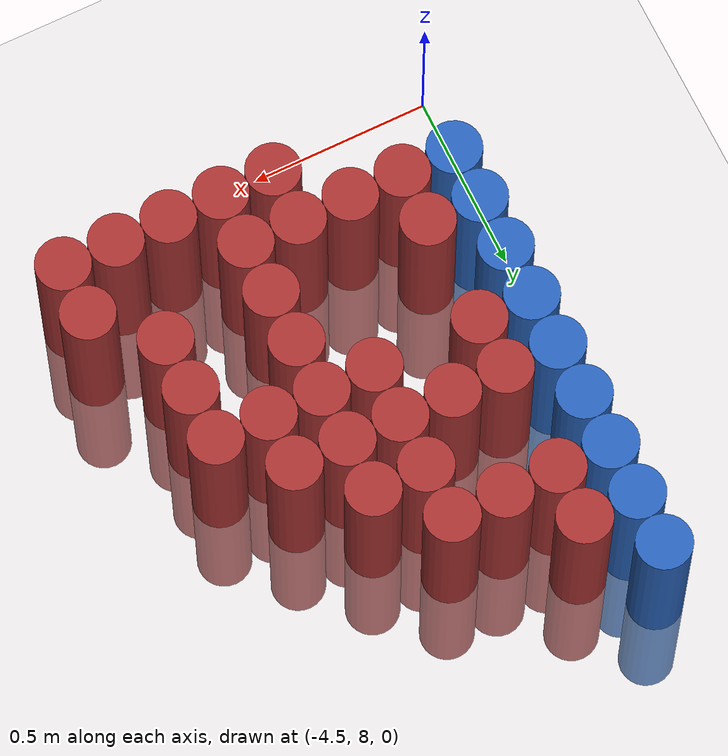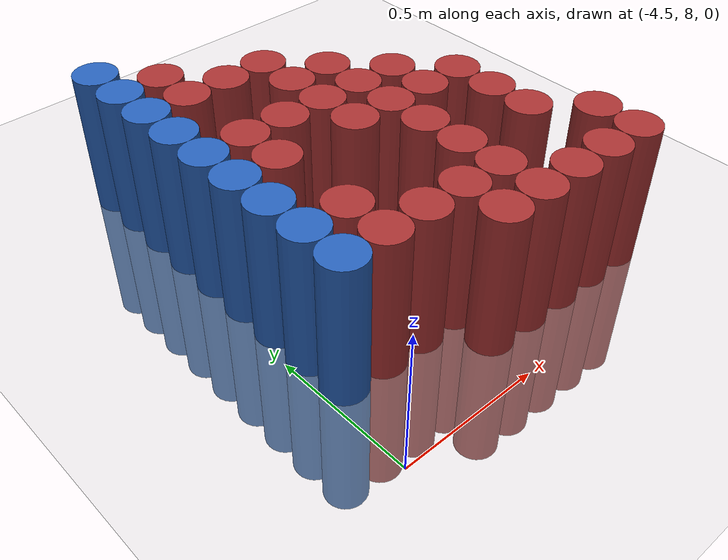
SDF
<sdf version="1.6">
 <world name="default">
  <model name="ground_plane">
   <static>1</static>
   <link name="link">
    <collision name="collision">
     <geometry><plane><normal>0 0 1</normal><size>100 100</size></plane></geometry>
     <surface><friction><ode><mu>100</mu><mu2>50</mu2></ode></friction></surface>
    </collision>
    <visual name="visual">
     <cast_shadows>0</cast_shadows>
     <geometry><plane><normal>0 0 1</normal><size>100 100</size></plane></geometry>
     <material>
      <script><uri>file://media/materials/scripts/gazebo.material</uri><name>Gazebo/Grey</name></script>
     </material>
    </visual>
   </link>
  </model>
  <model name="unit_cylinder_117">
   <static>1</static>
   <pose>-4.425000 8.325000 0.000000 0.000000 0.000000 0.000000</pose>
   <link name="link">
    <inertial>
     <mass>1</mass>
     <inertia><ixx>0.145833</ixx><ixy>0</ixy><ixz>0</ixz><iyy>0.145833</iyy><iyz>0</iyz><izz>0.125</izz></inertia>
    </inertial>
    <collision name="collision">
     <geometry><cylinder><radius>0.075000</radius><length>1</length></cylinder></geometry>
    </collision>
    <visual name="visual">
     <geometry><cylinder><radius>0.075000</radius><length>1</length></cylinder></geometry>
     <material>
      <ambient>0.152000 0.379000 0.720000 1</ambient>
      <diffuse>0.152000 0.379000 0.720000 1</diffuse>
     </material>
     <material>
      <script><name>Gazebo/Grey</name><uri>file://media/materials/scripts/gazebo.material</uri></script>
     </material>
    </visual>
    <sensor name="sensor_contact" type="contact"><contact><collision>collision</collision></contact></sensor>
   </link>
   <plugin filename="gz-sim-touchplugin-system" name="gz::sim::systems::TouchPlugin">
    <target>robot</target>
    <namespace>robot</namespace>
    <time>0.001</time>
    <enabled>true</enabled>
   </plugin>
  </model>
  <model name="unit_cylinder_118">
   <static>1</static>
   <pose>-4.425000 8.475000 0.000000 0.000000 0.000000 0.000000</pose>
   <link name="link">
    <inertial>
     <mass>1</mass>
     <inertia><ixx>0.145833</ixx><ixy>0</ixy><ixz>0</ixz><iyy>0.145833</iyy><iyz>0</iyz><izz>0.125</izz></inertia>
    </inertial>
    <collision name="collision">
     <geometry><cylinder><radius>0.075000</radius><length>1</length></cylinder></geometry>
    </collision>
    <visual name="visual">
     <geometry><cylinder><radius>0.075000</radius><length>1</length></cylinder></geometry>
     <material>
      <ambient>0.152000 0.379000 0.720000 1</ambient>
      <diffuse>0.152000 0.379000 0.720000 1</diffuse>
     </material>
     <material>
      <script><name>Gazebo/Grey</name><uri>file://media/materials/scripts/gazebo.material</uri></script>
     </material>
    </visual>
    <sensor name="sensor_contact" type="contact"><contact><collision>collision</collision></contact></sensor>
   </link>
   <plugin filename="gz-sim-touchplugin-system" name="gz::sim::systems::TouchPlugin">
    <target>robot</target>
    <namespace>robot</namespace>
    <time>0.001</time>
    <enabled>true</enabled>
   </plugin>
  </model>
  <model name="unit_cylinder_119">
   <static>1</static>
   <pose>-4.425000 8.625000 0.000000 0.000000 0.000000 0.000000</pose>
   <link name="link">
    <inertial>
     <mass>1</mass>
     <inertia><ixx>0.145833</ixx><ixy>0</ixy><ixz>0</ixz><iyy>0.145833</iyy><iyz>0</iyz><izz>0.125</izz></inertia>
    </inertial>
    <collision name="collision">
     <geometry><cylinder><radius>0.075000</radius><length>1</length></cylinder></geometry>
    </collision>
    <visual name="visual">
     <geometry><cylinder><radius>0.075000</radius><length>1</length></cylinder></geometry>
     <material>
      <ambient>0.152000 0.379000 0.720000 1</ambient>
      <diffuse>0.152000 0.379000 0.720000 1</diffuse>
     </material>
     <material>
      <script><name>Gazebo/Grey</name><uri>file://media/materials/scripts/gazebo.material</uri></script>
     </material>
    </visual>
    <sensor name="sensor_contact" type="contact"><contact><collision>collision</collision></contact></sensor>
   </link>
   <plugin filename="gz-sim-touchplugin-system" name="gz::sim::systems::TouchPlugin">
    <target>robot</target>
    <namespace>robot</namespace>
    <time>0.001</time>
    <enabled>true</enabled>
   </plugin>
  </model>
  <model name="unit_cylinder_120">
   <static>1</static>
   <pose>-4.425000 8.775000 0.000000 0.000000 0.000000 0.000000</pose>
   <link name="link">
    <inertial>
     <mass>1</mass>
     <inertia><ixx>0.145833</ixx><ixy>0</ixy><ixz>0</ixz><iyy>0.145833</iyy><iyz>0</iyz><izz>0.125</izz></inertia>
    </inertial>
    <collision name="collision">
     <geometry><cylinder><radius>0.075000</radius><length>1</length></cylinder></geometry>
    </collision>
    <visual name="visual">
     <geometry><cylinder><radius>0.075000</radius><length>1</length></cylinder></geometry>
     <material>
      <ambient>0.152000 0.379000 0.720000 1</ambient>
      <diffuse>0.152000 0.379000 0.720000 1</diffuse>
     </material>
     <material>
      <script><name>Gazebo/Grey</name><uri>file://media/materials/scripts/gazebo.material</uri></script>
     </material>
    </visual>
    <sensor name="sensor_contact" type="contact"><contact><collision>collision</collision></contact></sensor>
   </link>
   <plugin filename="gz-sim-touchplugin-system" name="gz::sim::systems::TouchPlugin">
    <target>robot</target>
    <namespace>robot</namespace>
    <time>0.001</time>
    <enabled>true</enabled>
   </plugin>
  </model>
  <model name="unit_cylinder_121">
   <static>1</static>
   <pose>-4.425000 8.925000 0.000000 0.000000 0.000000 0.000000</pose>
   <link name="link">
    <inertial>
     <mass>1</mass>
     <inertia><ixx>0.145833</ixx><ixy>0</ixy><ixz>0</ixz><iyy>0.145833</iyy><iyz>0</iyz><izz>0.125</izz></inertia>
    </inertial>
    <collision name="collision">
     <geometry><cylinder><radius>0.075000</radius><length>1</length></cylinder></geometry>
    </collision>
    <visual name="visual">
     <geometry><cylinder><radius>0.075000</radius><length>1</length></cylinder></geometry>
     <material>
      <ambient>0.152000 0.379000 0.720000 1</ambient>
      <diffuse>0.152000 0.379000 0.720000 1</diffuse>
     </material>
     <material>
      <script><name>Gazebo/Grey</name><uri>file://media/materials/scripts/gazebo.material</uri></script>
     </material>
    </visual>
    <sensor name="sensor_contact" type="contact"><contact><collision>collision</collision></contact></sensor>
   </link>
   <plugin filename="gz-sim-touchplugin-system" name="gz::sim::systems::TouchPlugin">
    <target>robot</target>
    <namespace>robot</namespace>
    <time>0.001</time>
    <enabled>true</enabled>
   </plugin>
  </model>
  <model name="unit_cylinder_122">
   <static>1</static>
   <pose>-4.425000 9.075000 0.000000 0.000000 0.000000 0.000000</pose>
   <link name="link">
    <inertial>
     <mass>1</mass>
     <inertia><ixx>0.145833</ixx><ixy>0</ixy><ixz>0</ixz><iyy>0.145833</iyy><iyz>0</iyz><izz>0.125</izz></inertia>
    </inertial>
    <collision name="collision">
     <geometry><cylinder><radius>0.075000</radius><length>1</length></cylinder></geometry>
    </collision>
    <visual name="visual">
     <geometry><cylinder><radius>0.075000</radius><length>1</length></cylinder></geometry>
     <material>
      <ambient>0.152000 0.379000 0.720000 1</ambient>
      <diffuse>0.152000 0.379000 0.720000 1</diffuse>
     </material>
     <material>
      <script><name>Gazebo/Grey</name><uri>file://media/materials/scripts/gazebo.material</uri></script>
     </material>
    </visual>
    <sensor name="sensor_contact" type="contact"><contact><collision>collision</collision></contact></sensor>
   </link>
   <plugin filename="gz-sim-touchplugin-system" name="gz::sim::systems::TouchPlugin">
    <target>robot</target>
    <namespace>robot</namespace>
    <time>0.001</time>
    <enabled>true</enabled>
   </plugin>
  </model>
  <model name="unit_cylinder_123">
   <static>1</static>
   <pose>-4.425000 9.225000 0.000000 0.000000 0.000000 0.000000</pose>
   <link name="link">
    <inertial>
     <mass>1</mass>
     <inertia><ixx>0.145833</ixx><ixy>0</ixy><ixz>0</ixz><iyy>0.145833</iyy><iyz>0</iyz><izz>0.125</izz></inertia>
    </inertial>
    <collision name="collision">
     <geometry><cylinder><radius>0.075000</radius><length>1</length></cylinder></geometry>
    </collision>
    <visual name="visual">
     <geometry><cylinder><radius>0.075000</radius><length>1</length></cylinder></geometry>
     <material>
      <ambient>0.152000 0.379000 0.720000 1</ambient>
      <diffuse>0.152000 0.379000 0.720000 1</diffuse>
     </material>
     <material>
      <script><name>Gazebo/Grey</name><uri>file://media/materials/scripts/gazebo.material</uri></script>
     </material>
    </visual>
    <sensor name="sensor_contact" type="contact"><contact><collision>collision</collision></contact></sensor>
   </link>
   <plugin filename="gz-sim-touchplugin-system" name="gz::sim::systems::TouchPlugin">
    <target>robot</target>
    <namespace>robot</namespace>
    <time>0.001</time>
    <enabled>true</enabled>
   </plugin>
  </model>
  <model name="unit_cylinder_124">
   <static>1</static>
   <pose>-4.425000 9.375000 0.000000 0.000000 0.000000 0.000000</pose>
   <link name="link">
    <inertial>
     <mass>1</mass>
     <inertia><ixx>0.145833</ixx><ixy>0</ixy><ixz>0</ixz><iyy>0.145833</iyy><iyz>0</iyz><izz>0.125</izz></inertia>
    </inertial>
    <collision name="collision">
     <geometry><cylinder><radius>0.075000</radius><length>1</length></cylinder></geometry>
    </collision>
    <visual name="visual">
     <geometry><cylinder><radius>0.075000</radius><length>1</length></cylinder></geometry>
     <material>
      <ambient>0.152000 0.379000 0.720000 1</ambient>
      <diffuse>0.152000 0.379000 0.720000 1</diffuse>
     </material>
     <material>
      <script><name>Gazebo/Grey</name><uri>file://media/materials/scripts/gazebo.material</uri></script>
     </material>
    </visual>
    <sensor name="sensor_contact" type="contact"><contact><collision>collision</collision></contact></sensor>
   </link>
   <plugin filename="gz-sim-touchplugin-system" name="gz::sim::systems::TouchPlugin">
    <target>robot</target>
    <namespace>robot</namespace>
    <time>0.001</time>
    <enabled>true</enabled>
   </plugin>
  </model>
  <model name="unit_cylinder_125">
   <static>1</static>
   <pose>-4.425000 9.525000 0.000000 0.000000 0.000000 0.000000</pose>
   <link name="link">
    <inertial>
     <mass>1</mass>
     <inertia><ixx>0.145833</ixx><ixy>0</ixy><ixz>0</ixz><iyy>0.145833</iyy><iyz>0</iyz><izz>0.125</izz></inertia>
    </inertial>
    <collision name="collision">
     <geometry><cylinder><radius>0.075000</radius><length>1</length></cylinder></geometry>
    </collision>
    <visual name="visual">
     <geometry><cylinder><radius>0.075000</radius><length>1</length></cylinder></geometry>
     <material>
      <ambient>0.152000 0.379000 0.720000 1</ambient>
      <diffuse>0.152000 0.379000 0.720000 1</diffuse>
     </material>
     <material>
      <script><name>Gazebo/Grey</name><uri>file://media/materials/scripts/gazebo.material</uri></script>
     </material>
    </visual>
    <sensor name="sensor_contact" type="contact"><contact><collision>collision</collision></contact></sensor>
   </link>
   <plugin filename="gz-sim-touchplugin-system" name="gz::sim::systems::TouchPlugin">
    <target>robot</target>
    <namespace>robot</namespace>
    <time>0.001</time>
    <enabled>true</enabled>
   </plugin>
  </model>
  <model name="unit_cylinder_136">
   <static>1</static>
   <pose>-4.275000 8.325000 0.000000 0.000000 0.000000 0.000000</pose>
   <link name="link">
    <inertial>
     <mass>1</mass>
     <inertia><ixx>0.145833</ixx><ixy>0</ixy><ixz>0</ixz><iyy>0.145833</iyy><iyz>0</iyz><izz>0.125</izz></inertia>
    </inertial>
    <collision name="collision">
     <geometry><cylinder><radius>0.075000</radius><length>1</length></cylinder></geometry>
    </collision>
    <visual name="visual">
     <geometry><cylinder><radius>0.075000</radius><length>1</length></cylinder></geometry>
     <material>
      <ambient>0.648000 0.192000 0.192000 1</ambient>
      <diffuse>0.648000 0.192000 0.192000 1</diffuse>
     </material>
     <material>
      <script><name>Gazebo/Grey</name><uri>file://media/materials/scripts/gazebo.material</uri></script>
     </material>
    </visual>
    <sensor name="sensor_contact" type="contact"><contact><collision>collision</collision></contact></sensor>
   </link>
   <plugin filename="gz-sim-touchplugin-system" name="gz::sim::systems::TouchPlugin">
    <target>robot</target>
    <namespace>robot</namespace>
    <time>0.001</time>
    <enabled>true</enabled>
   </plugin>
  </model>
  <model name="unit_cylinder_137">
   <static>1</static>
   <pose>-4.275000 8.475000 0.000000 0.000000 0.000000 0.000000</pose>
   <link name="link">
    <inertial>
     <mass>1</mass>
     <inertia><ixx>0.145833</ixx><ixy>0</ixy><ixz>0</ixz><iyy>0.145833</iyy><iyz>0</iyz><izz>0.125</izz></inertia>
    </inertial>
    <collision name="collision">
     <geometry><cylinder><radius>0.075000</radius><length>1</length></cylinder></geometry>
    </collision>
    <visual name="visual">
     <geometry><cylinder><radius>0.075000</radius><length>1</length></cylinder></geometry>
     <material>
      <ambient>0.648000 0.192000 0.192000 1</ambient>
      <diffuse>0.648000 0.192000 0.192000 1</diffuse>
     </material>
     <material>
      <script><name>Gazebo/Grey</name><uri>file://media/materials/scripts/gazebo.material</uri></script>
     </material>
    </visual>
    <sensor name="sensor_contact" type="contact"><contact><collision>collision</collision></contact></sensor>
   </link>
   <plugin filename="gz-sim-touchplugin-system" name="gz::sim::systems::TouchPlugin">
    <target>robot</target>
    <namespace>robot</namespace>
    <time>0.001</time>
    <enabled>true</enabled>
   </plugin>
  </model>
  <model name="unit_cylinder_138">
   <static>1</static>
   <pose>-4.275000 8.775000 0.000000 0.000000 0.000000 0.000000</pose>
   <link name="link">
    <inertial>
     <mass>1</mass>
     <inertia><ixx>0.145833</ixx><ixy>0</ixy><ixz>0</ixz><iyy>0.145833</iyy><iyz>0</iyz><izz>0.125</izz></inertia>
    </inertial>
    <collision name="collision">
     <geometry><cylinder><radius>0.075000</radius><length>1</length></cylinder></geometry>
    </collision>
    <visual name="visual">
     <geometry><cylinder><radius>0.075000</radius><length>1</length></cylinder></geometry>
     <material>
      <ambient>0.648000 0.192000 0.192000 1</ambient>
      <diffuse>0.648000 0.192000 0.192000 1</diffuse>
     </material>
     <material>
      <script><name>Gazebo/Grey</name><uri>file://media/materials/scripts/gazebo.material</uri></script>
     </material>
    </visual>
    <sensor name="sensor_contact" type="contact"><contact><collision>collision</collision></contact></sensor>
   </link>
   <plugin filename="gz-sim-touchplugin-system" name="gz::sim::systems::TouchPlugin">
    <target>robot</target>
    <namespace>robot</namespace>
    <time>0.001</time>
    <enabled>true</enabled>
   </plugin>
  </model>
  <model name="unit_cylinder_139">
   <static>1</static>
   <pose>-4.275000 8.925000 0.000000 0.000000 0.000000 0.000000</pose>
   <link name="link">
    <inertial>
     <mass>1</mass>
     <inertia><ixx>0.145833</ixx><ixy>0</ixy><ixz>0</ixz><iyy>0.145833</iyy><iyz>0</iyz><izz>0.125</izz></inertia>
    </inertial>
    <collision name="collision">
     <geometry><cylinder><radius>0.075000</radius><length>1</length></cylinder></geometry>
    </collision>
    <visual name="visual">
     <geometry><cylinder><radius>0.075000</radius><length>1</length></cylinder></geometry>
     <material>
      <ambient>0.648000 0.192000 0.192000 1</ambient>
      <diffuse>0.648000 0.192000 0.192000 1</diffuse>
     </material>
     <material>
      <script><name>Gazebo/Grey</name><uri>file://media/materials/scripts/gazebo.material</uri></script>
     </material>
    </visual>
    <sensor name="sensor_contact" type="contact"><contact><collision>collision</collision></contact></sensor>
   </link>
   <plugin filename="gz-sim-touchplugin-system" name="gz::sim::systems::TouchPlugin">
    <target>robot</target>
    <namespace>robot</namespace>
    <time>0.001</time>
    <enabled>true</enabled>
   </plugin>
  </model>
  <model name="unit_cylinder_140">
   <static>1</static>
   <pose>-4.275000 9.225000 0.000000 0.000000 0.000000 0.000000</pose>
   <link name="link">
    <inertial>
     <mass>1</mass>
     <inertia><ixx>0.145833</ixx><ixy>0</ixy><ixz>0</ixz><iyy>0.145833</iyy><iyz>0</iyz><izz>0.125</izz></inertia>
    </inertial>
    <collision name="collision">
     <geometry><cylinder><radius>0.075000</radius><length>1</length></cylinder></geometry>
    </collision>
    <visual name="visual">
     <geometry><cylinder><radius>0.075000</radius><length>1</length></cylinder></geometry>
     <material>
      <ambient>0.648000 0.192000 0.192000 1</ambient>
      <diffuse>0.648000 0.192000 0.192000 1</diffuse>
     </material>
     <material>
      <script><name>Gazebo/Grey</name><uri>file://media/materials/scripts/gazebo.material</uri></script>
     </material>
    </visual>
    <sensor name="sensor_contact" type="contact"><contact><collision>collision</collision></contact></sensor>
   </link>
   <plugin filename="gz-sim-touchplugin-system" name="gz::sim::systems::TouchPlugin">
    <target>robot</target>
    <namespace>robot</namespace>
    <time>0.001</time>
    <enabled>true</enabled>
   </plugin>
  </model>
  <model name="unit_cylinder_141">
   <static>1</static>
   <pose>-4.275000 9.375000 0.000000 0.000000 0.000000 0.000000</pose>
   <link name="link">
    <inertial>
     <mass>1</mass>
     <inertia><ixx>0.145833</ixx><ixy>0</ixy><ixz>0</ixz><iyy>0.145833</iyy><iyz>0</iyz><izz>0.125</izz></inertia>
    </inertial>
    <collision name="collision">
     <geometry><cylinder><radius>0.075000</radius><length>1</length></cylinder></geometry>
    </collision>
    <visual name="visual">
     <geometry><cylinder><radius>0.075000</radius><length>1</length></cylinder></geometry>
     <material>
      <ambient>0.648000 0.192000 0.192000 1</ambient>
      <diffuse>0.648000 0.192000 0.192000 1</diffuse>
     </material>
     <material>
      <script><name>Gazebo/Grey</name><uri>file://media/materials/scripts/gazebo.material</uri></script>
     </material>
    </visual>
    <sensor name="sensor_contact" type="contact"><contact><collision>collision</collision></contact></sensor>
   </link>
   <plugin filename="gz-sim-touchplugin-system" name="gz::sim::systems::TouchPlugin">
    <target>robot</target>
    <namespace>robot</namespace>
    <time>0.001</time>
    <enabled>true</enabled>
   </plugin>
  </model>
  <model name="unit_cylinder_151">
   <static>1</static>
   <pose>-4.125000 8.325000 0.000000 0.000000 0.000000 0.000000</pose>
   <link name="link">
    <inertial>
     <mass>1</mass>
     <inertia><ixx>0.145833</ixx><ixy>0</ixy><ixz>0</ixz><iyy>0.145833</iyy><iyz>0</iyz><izz>0.125</izz></inertia>
    </inertial>
    <collision name="collision">
     <geometry><cylinder><radius>0.075000</radius><length>1</length></cylinder></geometry>
    </collision>
    <visual name="visual">
     <geometry><cylinder><radius>0.075000</radius><length>1</length></cylinder></geometry>
     <material>
      <ambient>0.648000 0.192000 0.192000 1</ambient>
      <diffuse>0.648000 0.192000 0.192000 1</diffuse>
     </material>
     <material>
      <script><name>Gazebo/Grey</name><uri>file://media/materials/scripts/gazebo.material</uri></script>
     </material>
    </visual>
    <sensor name="sensor_contact" type="contact"><contact><collision>collision</collision></contact></sensor>
   </link>
   <plugin filename="gz-sim-touchplugin-system" name="gz::sim::systems::TouchPlugin">
    <target>robot</target>
    <namespace>robot</namespace>
    <time>0.001</time>
    <enabled>true</enabled>
   </plugin>
  </model>
  <model name="unit_cylinder_152">
   <static>1</static>
   <pose>-4.125000 8.925000 0.000000 0.000000 0.000000 0.000000</pose>
   <link name="link">
    <inertial>
     <mass>1</mass>
     <inertia><ixx>0.145833</ixx><ixy>0</ixy><ixz>0</ixz><iyy>0.145833</iyy><iyz>0</iyz><izz>0.125</izz></inertia>
    </inertial>
    <collision name="collision">
     <geometry><cylinder><radius>0.075000</radius><length>1</length></cylinder></geometry>
    </collision>
    <visual name="visual">
     <geometry><cylinder><radius>0.075000</radius><length>1</length></cylinder></geometry>
     <material>
      <ambient>0.648000 0.192000 0.192000 1</ambient>
      <diffuse>0.648000 0.192000 0.192000 1</diffuse>
     </material>
     <material>
      <script><name>Gazebo/Grey</name><uri>file://media/materials/scripts/gazebo.material</uri></script>
     </material>
    </visual>
    <sensor name="sensor_contact" type="contact"><contact><collision>collision</collision></contact></sensor>
   </link>
   <plugin filename="gz-sim-touchplugin-system" name="gz::sim::systems::TouchPlugin">
    <target>robot</target>
    <namespace>robot</namespace>
    <time>0.001</time>
    <enabled>true</enabled>
   </plugin>
  </model>
  <model name="unit_cylinder_153">
   <static>1</static>
   <pose>-4.125000 9.225000 0.000000 0.000000 0.000000 0.000000</pose>
   <link name="link">
    <inertial>
     <mass>1</mass>
     <inertia><ixx>0.145833</ixx><ixy>0</ixy><ixz>0</ixz><iyy>0.145833</iyy><iyz>0</iyz><izz>0.125</izz></inertia>
    </inertial>
    <collision name="collision">
     <geometry><cylinder><radius>0.075000</radius><length>1</length></cylinder></geometry>
    </collision>
    <visual name="visual">
     <geometry><cylinder><radius>0.075000</radius><length>1</length></cylinder></geometry>
     <material>
      <ambient>0.648000 0.192000 0.192000 1</ambient>
      <diffuse>0.648000 0.192000 0.192000 1</diffuse>
     </material>
     <material>
      <script><name>Gazebo/Grey</name><uri>file://media/materials/scripts/gazebo.material</uri></script>
     </material>
    </visual>
    <sensor name="sensor_contact" type="contact"><contact><collision>collision</collision></contact></sensor>
   </link>
   <plugin filename="gz-sim-touchplugin-system" name="gz::sim::systems::TouchPlugin">
    <target>robot</target>
    <namespace>robot</namespace>
    <time>0.001</time>
    <enabled>true</enabled>
   </plugin>
  </model>
  <model name="unit_cylinder_160">
   <static>1</static>
   <pose>-3.975000 8.175000 0.000000 0.000000 0.000000 0.000000</pose>
   <link name="link">
    <inertial>
     <mass>1</mass>
     <inertia><ixx>0.145833</ixx><ixy>0</ixy><ixz>0</ixz><iyy>0.145833</iyy><iyz>0</iyz><izz>0.125</izz></inertia>
    </inertial>
    <collision name="collision">
     <geometry><cylinder><radius>0.075000</radius><length>1</length></cylinder></geometry>
    </collision>
    <visual name="visual">
     <geometry><cylinder><radius>0.075000</radius><length>1</length></cylinder></geometry>
     <material>
      <ambient>0.648000 0.192000 0.192000 1</ambient>
      <diffuse>0.648000 0.192000 0.192000 1</diffuse>
     </material>
     <material>
      <script><name>Gazebo/Grey</name><uri>file://media/materials/scripts/gazebo.material</uri></script>
     </material>
    </visual>
    <sensor name="sensor_contact" type="contact"><contact><collision>collision</collision></contact></sensor>
   </link>
   <plugin filename="gz-sim-touchplugin-system" name="gz::sim::systems::TouchPlugin">
    <target>robot</target>
    <namespace>robot</namespace>
    <time>0.001</time>
    <enabled>true</enabled>
   </plugin>
  </model>
  <model name="unit_cylinder_161">
   <static>1</static>
   <pose>-3.975000 8.325000 0.000000 0.000000 0.000000 0.000000</pose>
   <link name="link">
    <inertial>
     <mass>1</mass>
     <inertia><ixx>0.145833</ixx><ixy>0</ixy><ixz>0</ixz><iyy>0.145833</iyy><iyz>0</iyz><izz>0.125</izz></inertia>
    </inertial>
    <collision name="collision">
     <geometry><cylinder><radius>0.075000</radius><length>1</length></cylinder></geometry>
    </collision>
    <visual name="visual">
     <geometry><cylinder><radius>0.075000</radius><length>1</length></cylinder></geometry>
     <material>
      <ambient>0.648000 0.192000 0.192000 1</ambient>
      <diffuse>0.648000 0.192000 0.192000 1</diffuse>
     </material>
     <material>
      <script><name>Gazebo/Grey</name><uri>file://media/materials/scripts/gazebo.material</uri></script>
     </material>
    </visual>
    <sensor name="sensor_contact" type="contact"><contact><collision>collision</collision></contact></sensor>
   </link>
   <plugin filename="gz-sim-touchplugin-system" name="gz::sim::systems::TouchPlugin">
    <target>robot</target>
    <namespace>robot</namespace>
    <time>0.001</time>
    <enabled>true</enabled>
   </plugin>
  </model>
  <model name="unit_cylinder_162">
   <static>1</static>
   <pose>-3.975000 8.775000 0.000000 0.000000 0.000000 0.000000</pose>
   <link name="link">
    <inertial>
     <mass>1</mass>
     <inertia><ixx>0.145833</ixx><ixy>0</ixy><ixz>0</ixz><iyy>0.145833</iyy><iyz>0</iyz><izz>0.125</izz></inertia>
    </inertial>
    <collision name="collision">
     <geometry><cylinder><radius>0.075000</radius><length>1</length></cylinder></geometry>
    </collision>
    <visual name="visual">
     <geometry><cylinder><radius>0.075000</radius><length>1</length></cylinder></geometry>
     <material>
      <ambient>0.648000 0.192000 0.192000 1</ambient>
      <diffuse>0.648000 0.192000 0.192000 1</diffuse>
     </material>
     <material>
      <script><name>Gazebo/Grey</name><uri>file://media/materials/scripts/gazebo.material</uri></script>
     </material>
    </visual>
    <sensor name="sensor_contact" type="contact"><contact><collision>collision</collision></contact></sensor>
   </link>
   <plugin filename="gz-sim-touchplugin-system" name="gz::sim::systems::TouchPlugin">
    <target>robot</target>
    <namespace>robot</namespace>
    <time>0.001</time>
    <enabled>true</enabled>
   </plugin>
  </model>
  <model name="unit_cylinder_163">
   <static>1</static>
   <pose>-3.975000 8.925000 0.000000 0.000000 0.000000 0.000000</pose>
   <link name="link">
    <inertial>
     <mass>1</mass>
     <inertia><ixx>0.145833</ixx><ixy>0</ixy><ixz>0</ixz><iyy>0.145833</iyy><iyz>0</iyz><izz>0.125</izz></inertia>
    </inertial>
    <collision name="collision">
     <geometry><cylinder><radius>0.075000</radius><length>1</length></cylinder></geometry>
    </collision>
    <visual name="visual">
     <geometry><cylinder><radius>0.075000</radius><length>1</length></cylinder></geometry>
     <material>
      <ambient>0.648000 0.192000 0.192000 1</ambient>
      <diffuse>0.648000 0.192000 0.192000 1</diffuse>
     </material>
     <material>
      <script><name>Gazebo/Grey</name><uri>file://media/materials/scripts/gazebo.material</uri></script>
     </material>
    </visual>
    <sensor name="sensor_contact" type="contact"><contact><collision>collision</collision></contact></sensor>
   </link>
   <plugin filename="gz-sim-touchplugin-system" name="gz::sim::systems::TouchPlugin">
    <target>robot</target>
    <namespace>robot</namespace>
    <time>0.001</time>
    <enabled>true</enabled>
   </plugin>
  </model>
  <model name="unit_cylinder_164">
   <static>1</static>
   <pose>-3.975000 9.075000 0.000000 0.000000 0.000000 0.000000</pose>
   <link name="link">
    <inertial>
     <mass>1</mass>
     <inertia><ixx>0.145833</ixx><ixy>0</ixy><ixz>0</ixz><iyy>0.145833</iyy><iyz>0</iyz><izz>0.125</izz></inertia>
    </inertial>
    <collision name="collision">
     <geometry><cylinder><radius>0.075000</radius><length>1</length></cylinder></geometry>
    </collision>
    <visual name="visual">
     <geometry><cylinder><radius>0.075000</radius><length>1</length></cylinder></geometry>
     <material>
      <ambient>0.648000 0.192000 0.192000 1</ambient>
      <diffuse>0.648000 0.192000 0.192000 1</diffuse>
     </material>
     <material>
      <script><name>Gazebo/Grey</name><uri>file://media/materials/scripts/gazebo.material</uri></script>
     </material>
    </visual>
    <sensor name="sensor_contact" type="contact"><contact><collision>collision</collision></contact></sensor>
   </link>
   <plugin filename="gz-sim-touchplugin-system" name="gz::sim::systems::TouchPlugin">
    <target>robot</target>
    <namespace>robot</namespace>
    <time>0.001</time>
    <enabled>true</enabled>
   </plugin>
  </model>
  <model name="unit_cylinder_165">
   <static>1</static>
   <pose>-3.975000 9.225000 0.000000 0.000000 0.000000 0.000000</pose>
   <link name="link">
    <inertial>
     <mass>1</mass>
     <inertia><ixx>0.145833</ixx><ixy>0</ixy><ixz>0</ixz><iyy>0.145833</iyy><iyz>0</iyz><izz>0.125</izz></inertia>
    </inertial>
    <collision name="collision">
     <geometry><cylinder><radius>0.075000</radius><length>1</length></cylinder></geometry>
    </collision>
    <visual name="visual">
     <geometry><cylinder><radius>0.075000</radius><length>1</length></cylinder></geometry>
     <material>
      <ambient>0.648000 0.192000 0.192000 1</ambient>
      <diffuse>0.648000 0.192000 0.192000 1</diffuse>
     </material>
     <material>
      <script><name>Gazebo/Grey</name><uri>file://media/materials/scripts/gazebo.material</uri></script>
     </material>
    </visual>
    <sensor name="sensor_contact" type="contact"><contact><collision>collision</collision></contact></sensor>
   </link>
   <plugin filename="gz-sim-touchplugin-system" name="gz::sim::systems::TouchPlugin">
    <target>robot</target>
    <namespace>robot</namespace>
    <time>0.001</time>
    <enabled>true</enabled>
   </plugin>
  </model>
  <model name="unit_cylinder_172">
   <static>1</static>
   <pose>-3.825000 8.175000 0.000000 0.000000 0.000000 0.000000</pose>
   <link name="link">
    <inertial>
     <mass>1</mass>
     <inertia><ixx>0.145833</ixx><ixy>0</ixy><ixz>0</ixz><iyy>0.145833</iyy><iyz>0</iyz><izz>0.125</izz></inertia>
    </inertial>
    <collision name="collision">
     <geometry><cylinder><radius>0.075000</radius><length>1</length></cylinder></geometry>
    </collision>
    <visual name="visual">
     <geometry><cylinder><radius>0.075000</radius><length>1</length></cylinder></geometry>
     <material>
      <ambient>0.648000 0.192000 0.192000 1</ambient>
      <diffuse>0.648000 0.192000 0.192000 1</diffuse>
     </material>
     <material>
      <script><name>Gazebo/Grey</name><uri>file://media/materials/scripts/gazebo.material</uri></script>
     </material>
    </visual>
    <sensor name="sensor_contact" type="contact"><contact><collision>collision</collision></contact></sensor>
   </link>
   <plugin filename="gz-sim-touchplugin-system" name="gz::sim::systems::TouchPlugin">
    <target>robot</target>
    <namespace>robot</namespace>
    <time>0.001</time>
    <enabled>true</enabled>
   </plugin>
  </model>
  <model name="unit_cylinder_173">
   <static>1</static>
   <pose>-3.825000 8.325000 0.000000 0.000000 0.000000 0.000000</pose>
   <link name="link">
    <inertial>
     <mass>1</mass>
     <inertia><ixx>0.145833</ixx><ixy>0</ixy><ixz>0</ixz><iyy>0.145833</iyy><iyz>0</iyz><izz>0.125</izz></inertia>
    </inertial>
    <collision name="collision">
     <geometry><cylinder><radius>0.075000</radius><length>1</length></cylinder></geometry>
    </collision>
    <visual name="visual">
     <geometry><cylinder><radius>0.075000</radius><length>1</length></cylinder></geometry>
     <material>
      <ambient>0.648000 0.192000 0.192000 1</ambient>
      <diffuse>0.648000 0.192000 0.192000 1</diffuse>
     </material>
     <material>
      <script><name>Gazebo/Grey</name><uri>file://media/materials/scripts/gazebo.material</uri></script>
     </material>
    </visual>
    <sensor name="sensor_contact" type="contact"><contact><collision>collision</collision></contact></sensor>
   </link>
   <plugin filename="gz-sim-touchplugin-system" name="gz::sim::systems::TouchPlugin">
    <target>robot</target>
    <namespace>robot</namespace>
    <time>0.001</time>
    <enabled>true</enabled>
   </plugin>
  </model>
  <model name="unit_cylinder_174">
   <static>1</static>
   <pose>-3.825000 8.475000 0.000000 0.000000 0.000000 0.000000</pose>
   <link name="link">
    <inertial>
     <mass>1</mass>
     <inertia><ixx>0.145833</ixx><ixy>0</ixy><ixz>0</ixz><iyy>0.145833</iyy><iyz>0</iyz><izz>0.125</izz></inertia>
    </inertial>
    <collision name="collision">
     <geometry><cylinder><radius>0.075000</radius><length>1</length></cylinder></geometry>
    </collision>
    <visual name="visual">
     <geometry><cylinder><radius>0.075000</radius><length>1</length></cylinder></geometry>
     <material>
      <ambient>0.648000 0.192000 0.192000 1</ambient>
      <diffuse>0.648000 0.192000 0.192000 1</diffuse>
     </material>
     <material>
      <script><name>Gazebo/Grey</name><uri>file://media/materials/scripts/gazebo.material</uri></script>
     </material>
    </visual>
    <sensor name="sensor_contact" type="contact"><contact><collision>collision</collision></contact></sensor>
   </link>
   <plugin filename="gz-sim-touchplugin-system" name="gz::sim::systems::TouchPlugin">
    <target>robot</target>
    <namespace>robot</namespace>
    <time>0.001</time>
    <enabled>true</enabled>
   </plugin>
  </model>
  <model name="unit_cylinder_175">
   <static>1</static>
   <pose>-3.825000 8.625000 0.000000 0.000000 0.000000 0.000000</pose>
   <link name="link">
    <inertial>
     <mass>1</mass>
     <inertia><ixx>0.145833</ixx><ixy>0</ixy><ixz>0</ixz><iyy>0.145833</iyy><iyz>0</iyz><izz>0.125</izz></inertia>
    </inertial>
    <collision name="collision">
     <geometry><cylinder><radius>0.075000</radius><length>1</length></cylinder></geometry>
    </collision>
    <visual name="visual">
     <geometry><cylinder><radius>0.075000</radius><length>1</length></cylinder></geometry>
     <material>
      <ambient>0.648000 0.192000 0.192000 1</ambient>
      <diffuse>0.648000 0.192000 0.192000 1</diffuse>
     </material>
     <material>
      <script><name>Gazebo/Grey</name><uri>file://media/materials/scripts/gazebo.material</uri></script>
     </material>
    </visual>
    <sensor name="sensor_contact" type="contact"><contact><collision>collision</collision></contact></sensor>
   </link>
   <plugin filename="gz-sim-touchplugin-system" name="gz::sim::systems::TouchPlugin">
    <target>robot</target>
    <namespace>robot</namespace>
    <time>0.001</time>
    <enabled>true</enabled>
   </plugin>
  </model>
  <model name="unit_cylinder_176">
   <static>1</static>
   <pose>-3.825000 8.775000 0.000000 0.000000 0.000000 0.000000</pose>
   <link name="link">
    <inertial>
     <mass>1</mass>
     <inertia><ixx>0.145833</ixx><ixy>0</ixy><ixz>0</ixz><iyy>0.145833</iyy><iyz>0</iyz><izz>0.125</izz></inertia>
    </inertial>
    <collision name="collision">
     <geometry><cylinder><radius>0.075000</radius><length>1</length></cylinder></geometry>
    </collision>
    <visual name="visual">
     <geometry><cylinder><radius>0.075000</radius><length>1</length></cylinder></geometry>
     <material>
      <ambient>0.648000 0.192000 0.192000 1</ambient>
      <diffuse>0.648000 0.192000 0.192000 1</diffuse>
     </material>
     <material>
      <script><name>Gazebo/Grey</name><uri>file://media/materials/scripts/gazebo.material</uri></script>
     </material>
    </visual>
    <sensor name="sensor_contact" type="contact"><contact><collision>collision</collision></contact></sensor>
   </link>
   <plugin filename="gz-sim-touchplugin-system" name="gz::sim::systems::TouchPlugin">
    <target>robot</target>
    <namespace>robot</namespace>
    <time>0.001</time>
    <enabled>true</enabled>
   </plugin>
  </model>
  <model name="unit_cylinder_177">
   <static>1</static>
   <pose>-3.825000 8.925000 0.000000 0.000000 0.000000 0.000000</pose>
   <link name="link">
    <inertial>
     <mass>1</mass>
     <inertia><ixx>0.145833</ixx><ixy>0</ixy><ixz>0</ixz><iyy>0.145833</iyy><iyz>0</iyz><izz>0.125</izz></inertia>
    </inertial>
    <collision name="collision">
     <geometry><cylinder><radius>0.075000</radius><length>1</length></cylinder></geometry>
    </collision>
    <visual name="visual">
     <geometry><cylinder><radius>0.075000</radius><length>1</length></cylinder></geometry>
     <material>
      <ambient>0.648000 0.192000 0.192000 1</ambient>
      <diffuse>0.648000 0.192000 0.192000 1</diffuse>
     </material>
     <material>
      <script><name>Gazebo/Grey</name><uri>file://media/materials/scripts/gazebo.material</uri></script>
     </material>
    </visual>
    <sensor name="sensor_contact" type="contact"><contact><collision>collision</collision></contact></sensor>
   </link>
   <plugin filename="gz-sim-touchplugin-system" name="gz::sim::systems::TouchPlugin">
    <target>robot</target>
    <namespace>robot</namespace>
    <time>0.001</time>
    <enabled>true</enabled>
   </plugin>
  </model>
  <model name="unit_cylinder_178">
   <static>1</static>
   <pose>-3.825000 9.075000 0.000000 0.000000 0.000000 0.000000</pose>
   <link name="link">
    <inertial>
     <mass>1</mass>
     <inertia><ixx>0.145833</ixx><ixy>0</ixy><ixz>0</ixz><iyy>0.145833</iyy><iyz>0</iyz><izz>0.125</izz></inertia>
    </inertial>
    <collision name="collision">
     <geometry><cylinder><radius>0.075000</radius><length>1</length></cylinder></geometry>
    </collision>
    <visual name="visual">
     <geometry><cylinder><radius>0.075000</radius><length>1</length></cylinder></geometry>
     <material>
      <ambient>0.648000 0.192000 0.192000 1</ambient>
      <diffuse>0.648000 0.192000 0.192000 1</diffuse>
     </material>
     <material>
      <script><name>Gazebo/Grey</name><uri>file://media/materials/scripts/gazebo.material</uri></script>
     </material>
    </visual>
    <sensor name="sensor_contact" type="contact"><contact><collision>collision</collision></contact></sensor>
   </link>
   <plugin filename="gz-sim-touchplugin-system" name="gz::sim::systems::TouchPlugin">
    <target>robot</target>
    <namespace>robot</namespace>
    <time>0.001</time>
    <enabled>true</enabled>
   </plugin>
  </model>
  <model name="unit_cylinder_184">
   <static>1</static>
   <pose>-3.675000 8.175000 0.000000 0.000000 0.000000 0.000000</pose>
   <link name="link">
    <inertial>
     <mass>1</mass>
     <inertia><ixx>0.145833</ixx><ixy>0</ixy><ixz>0</ixz><iyy>0.145833</iyy><iyz>0</iyz><izz>0.125</izz></inertia>
    </inertial>
    <collision name="collision">
     <geometry><cylinder><radius>0.075000</radius><length>1</length></cylinder></geometry>
    </collision>
    <visual name="visual">
     <geometry><cylinder><radius>0.075000</radius><length>1</length></cylinder></geometry>
     <material>
      <ambient>0.648000 0.192000 0.192000 1</ambient>
      <diffuse>0.648000 0.192000 0.192000 1</diffuse>
     </material>
     <material>
      <script><name>Gazebo/Grey</name><uri>file://media/materials/scripts/gazebo.material</uri></script>
     </material>
    </visual>
    <sensor name="sensor_contact" type="contact"><contact><collision>collision</collision></contact></sensor>
   </link>
   <plugin filename="gz-sim-touchplugin-system" name="gz::sim::systems::TouchPlugin">
    <target>robot</target>
    <namespace>robot</namespace>
    <time>0.001</time>
    <enabled>true</enabled>
   </plugin>
  </model>
  <model name="unit_cylinder_185">
   <static>1</static>
   <pose>-3.675000 8.775000 0.000000 0.000000 0.000000 0.000000</pose>
   <link name="link">
    <inertial>
     <mass>1</mass>
     <inertia><ixx>0.145833</ixx><ixy>0</ixy><ixz>0</ixz><iyy>0.145833</iyy><iyz>0</iyz><izz>0.125</izz></inertia>
    </inertial>
    <collision name="collision">
     <geometry><cylinder><radius>0.075000</radius><length>1</length></cylinder></geometry>
    </collision>
    <visual name="visual">
     <geometry><cylinder><radius>0.075000</radius><length>1</length></cylinder></geometry>
     <material>
      <ambient>0.648000 0.192000 0.192000 1</ambient>
      <diffuse>0.648000 0.192000 0.192000 1</diffuse>
     </material>
     <material>
      <script><name>Gazebo/Grey</name><uri>file://media/materials/scripts/gazebo.material</uri></script>
     </material>
    </visual>
    <sensor name="sensor_contact" type="contact"><contact><collision>collision</collision></contact></sensor>
   </link>
   <plugin filename="gz-sim-touchplugin-system" name="gz::sim::systems::TouchPlugin">
    <target>robot</target>
    <namespace>robot</namespace>
    <time>0.001</time>
    <enabled>true</enabled>
   </plugin>
  </model>
  <model name="unit_cylinder_186">
   <static>1</static>
   <pose>-3.675000 8.925000 0.000000 0.000000 0.000000 0.000000</pose>
   <link name="link">
    <inertial>
     <mass>1</mass>
     <inertia><ixx>0.145833</ixx><ixy>0</ixy><ixz>0</ixz><iyy>0.145833</iyy><iyz>0</iyz><izz>0.125</izz></inertia>
    </inertial>
    <collision name="collision">
     <geometry><cylinder><radius>0.075000</radius><length>1</length></cylinder></geometry>
    </collision>
    <visual name="visual">
     <geometry><cylinder><radius>0.075000</radius><length>1</length></cylinder></geometry>
     <material>
      <ambient>0.648000 0.192000 0.192000 1</ambient>
      <diffuse>0.648000 0.192000 0.192000 1</diffuse>
     </material>
     <material>
      <script><name>Gazebo/Grey</name><uri>file://media/materials/scripts/gazebo.material</uri></script>
     </material>
    </visual>
    <sensor name="sensor_contact" type="contact"><contact><collision>collision</collision></contact></sensor>
   </link>
   <plugin filename="gz-sim-touchplugin-system" name="gz::sim::systems::TouchPlugin">
    <target>robot</target>
    <namespace>robot</namespace>
    <time>0.001</time>
    <enabled>true</enabled>
   </plugin>
  </model>
  <model name="unit_cylinder_191">
   <static>1</static>
   <pose>-3.525000 8.175000 0.000000 0.000000 0.000000 0.000000</pose>
   <link name="link">
    <inertial>
     <mass>1</mass>
     <inertia><ixx>0.145833</ixx><ixy>0</ixy><ixz>0</ixz><iyy>0.145833</iyy><iyz>0</iyz><izz>0.125</izz></inertia>
    </inertial>
    <collision name="collision">
     <geometry><cylinder><radius>0.075000</radius><length>1</length></cylinder></geometry>
    </collision>
    <visual name="visual">
     <geometry><cylinder><radius>0.075000</radius><length>1</length></cylinder></geometry>
     <material>
      <ambient>0.648000 0.192000 0.192000 1</ambient>
      <diffuse>0.648000 0.192000 0.192000 1</diffuse>
     </material>
     <material>
      <script><name>Gazebo/Grey</name><uri>file://media/materials/scripts/gazebo.material</uri></script>
     </material>
    </visual>
    <sensor name="sensor_contact" type="contact"><contact><collision>collision</collision></contact></sensor>
   </link>
   <plugin filename="gz-sim-touchplugin-system" name="gz::sim::systems::TouchPlugin">
    <target>robot</target>
    <namespace>robot</namespace>
    <time>0.001</time>
    <enabled>true</enabled>
   </plugin>
  </model>
  <model name="unit_cylinder_192">
   <static>1</static>
   <pose>-3.525000 8.475000 0.000000 0.000000 0.000000 0.000000</pose>
   <link name="link">
    <inertial>
     <mass>1</mass>
     <inertia><ixx>0.145833</ixx><ixy>0</ixy><ixz>0</ixz><iyy>0.145833</iyy><iyz>0</iyz><izz>0.125</izz></inertia>
    </inertial>
    <collision name="collision">
     <geometry><cylinder><radius>0.075000</radius><length>1</length></cylinder></geometry>
    </collision>
    <visual name="visual">
     <geometry><cylinder><radius>0.075000</radius><length>1</length></cylinder></geometry>
     <material>
      <ambient>0.648000 0.192000 0.192000 1</ambient>
      <diffuse>0.648000 0.192000 0.192000 1</diffuse>
     </material>
     <material>
      <script><name>Gazebo/Grey</name><uri>file://media/materials/scripts/gazebo.material</uri></script>
     </material>
    </visual>
    <sensor name="sensor_contact" type="contact"><contact><collision>collision</collision></contact></sensor>
   </link>
   <plugin filename="gz-sim-touchplugin-system" name="gz::sim::systems::TouchPlugin">
    <target>robot</target>
    <namespace>robot</namespace>
    <time>0.001</time>
    <enabled>true</enabled>
   </plugin>
  </model>
  <model name="unit_cylinder_193">
   <static>1</static>
   <pose>-3.525000 8.625000 0.000000 0.000000 0.000000 0.000000</pose>
   <link name="link">
    <inertial>
     <mass>1</mass>
     <inertia><ixx>0.145833</ixx><ixy>0</ixy><ixz>0</ixz><iyy>0.145833</iyy><iyz>0</iyz><izz>0.125</izz></inertia>
    </inertial>
    <collision name="collision">
     <geometry><cylinder><radius>0.075000</radius><length>1</length></cylinder></geometry>
    </collision>
    <visual name="visual">
     <geometry><cylinder><radius>0.075000</radius><length>1</length></cylinder></geometry>
     <material>
      <ambient>0.648000 0.192000 0.192000 1</ambient>
      <diffuse>0.648000 0.192000 0.192000 1</diffuse>
     </material>
     <material>
      <script><name>Gazebo/Grey</name><uri>file://media/materials/scripts/gazebo.material</uri></script>
     </material>
    </visual>
    <sensor name="sensor_contact" type="contact"><contact><collision>collision</collision></contact></sensor>
   </link>
   <plugin filename="gz-sim-touchplugin-system" name="gz::sim::systems::TouchPlugin">
    <target>robot</target>
    <namespace>robot</namespace>
    <time>0.001</time>
    <enabled>true</enabled>
   </plugin>
  </model>
  <model name="unit_cylinder_194">
   <static>1</static>
   <pose>-3.525000 8.775000 0.000000 0.000000 0.000000 0.000000</pose>
   <link name="link">
    <inertial>
     <mass>1</mass>
     <inertia><ixx>0.145833</ixx><ixy>0</ixy><ixz>0</ixz><iyy>0.145833</iyy><iyz>0</iyz><izz>0.125</izz></inertia>
    </inertial>
    <collision name="collision">
     <geometry><cylinder><radius>0.075000</radius><length>1</length></cylinder></geometry>
    </collision>
    <visual name="visual">
     <geometry><cylinder><radius>0.075000</radius><length>1</length></cylinder></geometry>
     <material>
      <ambient>0.648000 0.192000 0.192000 1</ambient>
      <diffuse>0.648000 0.192000 0.192000 1</diffuse>
     </material>
     <material>
      <script><name>Gazebo/Grey</name><uri>file://media/materials/scripts/gazebo.material</uri></script>
     </material>
    </visual>
    <sensor name="sensor_contact" type="contact"><contact><collision>collision</collision></contact></sensor>
   </link>
   <plugin filename="gz-sim-touchplugin-system" name="gz::sim::systems::TouchPlugin">
    <target>robot</target>
    <namespace>robot</namespace>
    <time>0.001</time>
    <enabled>true</enabled>
   </plugin>
  </model>
  <model name="unit_cylinder_198">
   <static>1</static>
   <pose>-3.375000 8.175000 0.000000 0.000000 0.000000 0.000000</pose>
   <link name="link">
    <inertial>
     <mass>1</mass>
     <inertia><ixx>0.145833</ixx><ixy>0</ixy><ixz>0</ixz><iyy>0.145833</iyy><iyz>0</iyz><izz>0.125</izz></inertia>
    </inertial>
    <collision name="collision">
     <geometry><cylinder><radius>0.075000</radius><length>1</length></cylinder></geometry>
    </collision>
    <visual name="visual">
     <geometry><cylinder><radius>0.075000</radius><length>1</length></cylinder></geometry>
     <material>
      <ambient>0.648000 0.192000 0.192000 1</ambient>
      <diffuse>0.648000 0.192000 0.192000 1</diffuse>
     </material>
     <material>
      <script><name>Gazebo/Grey</name><uri>file://media/materials/scripts/gazebo.material</uri></script>
     </material>
    </visual>
    <sensor name="sensor_contact" type="contact"><contact><collision>collision</collision></contact></sensor>
   </link>
   <plugin filename="gz-sim-touchplugin-system" name="gz::sim::systems::TouchPlugin">
    <target>robot</target>
    <namespace>robot</namespace>
    <time>0.001</time>
    <enabled>true</enabled>
   </plugin>
  </model>
  <model name="unit_cylinder_199">
   <static>1</static>
   <pose>-3.375000 8.325000 0.000000 0.000000 0.000000 0.000000</pose>
   <link name="link">
    <inertial>
     <mass>1</mass>
     <inertia><ixx>0.145833</ixx><ixy>0</ixy><ixz>0</ixz><iyy>0.145833</iyy><iyz>0</iyz><izz>0.125</izz></inertia>
    </inertial>
    <collision name="collision">
     <geometry><cylinder><radius>0.075000</radius><length>1</length></cylinder></geometry>
    </collision>
    <visual name="visual">
     <geometry><cylinder><radius>0.075000</radius><length>1</length></cylinder></geometry>
     <material>
      <ambient>0.648000 0.192000 0.192000 1</ambient>
      <diffuse>0.648000 0.192000 0.192000 1</diffuse>
     </material>
     <material>
      <script><name>Gazebo/Grey</name><uri>file://media/materials/scripts/gazebo.material</uri></script>
     </material>
    </visual>
    <sensor name="sensor_contact" type="contact"><contact><collision>collision</collision></contact></sensor>
   </link>
   <plugin filename="gz-sim-touchplugin-system" name="gz::sim::systems::TouchPlugin">
    <target>robot</target>
    <namespace>robot</namespace>
    <time>0.001</time>
    <enabled>true</enabled>
   </plugin>
  </model>
 </world>
</sdf>
